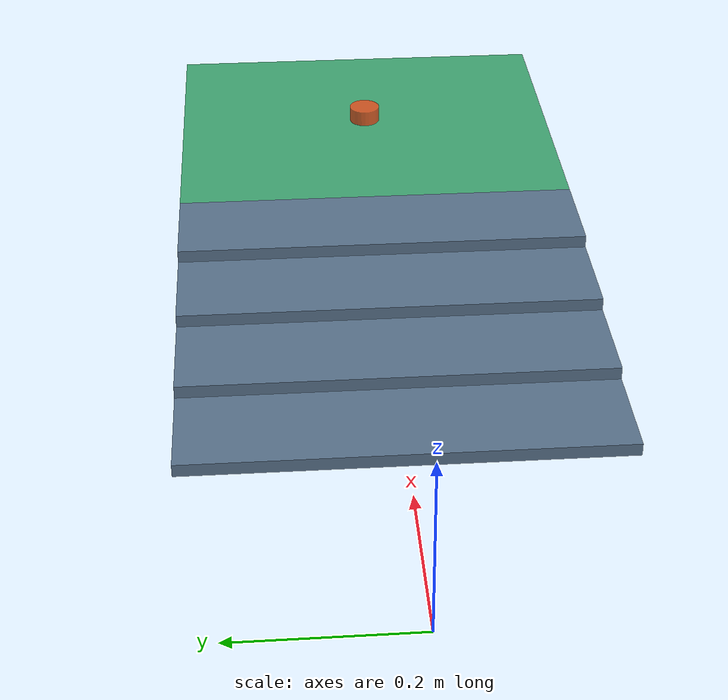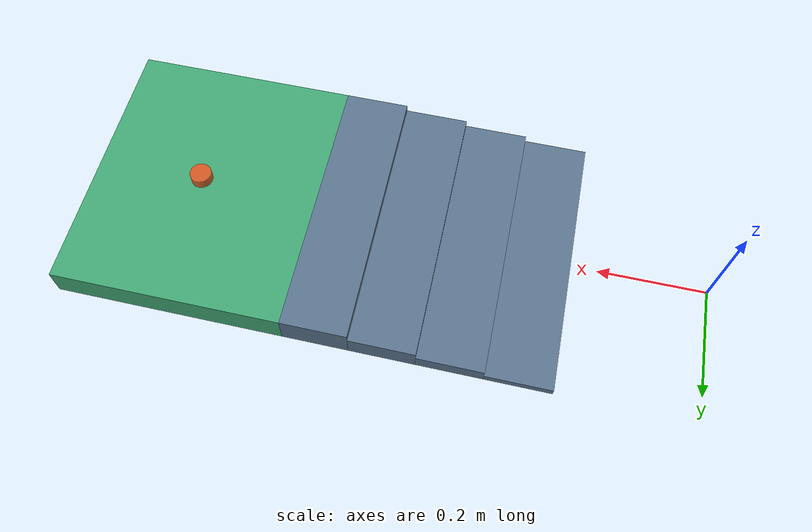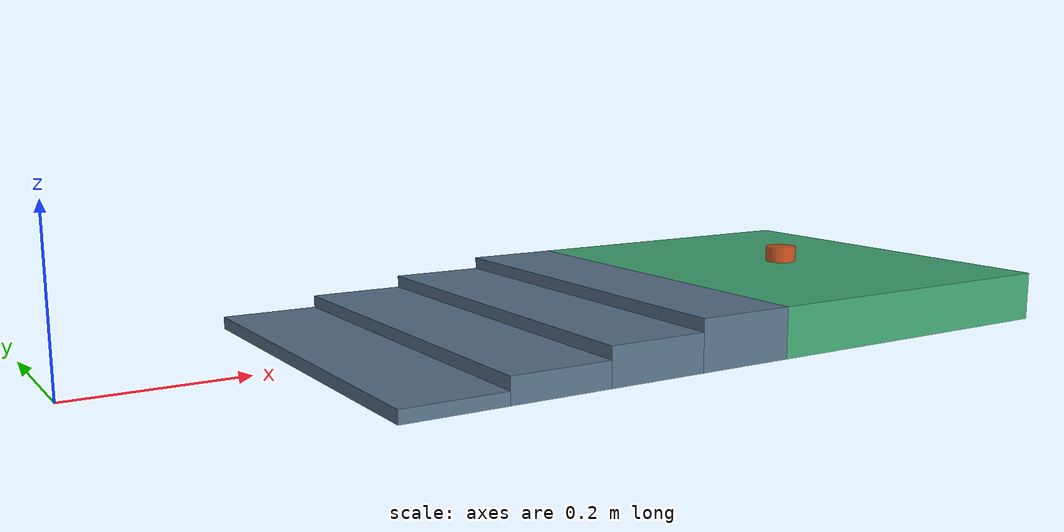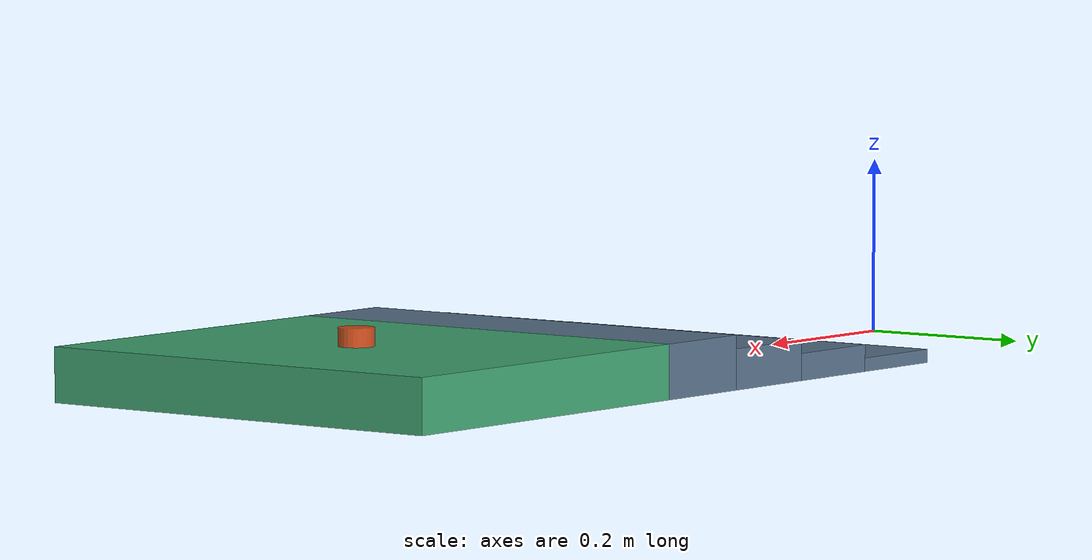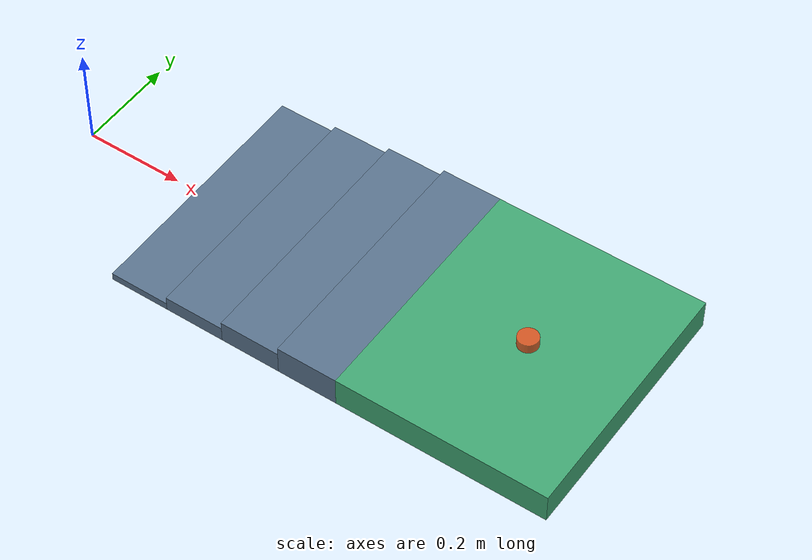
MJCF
<mujoco model="stairs">
    <asset>
        <material name="stairs_mat" rgba="0.35 0.45 0.55 1.0" reflectance="0.2" roughness="0.5"/>
        <material name="stairs_top_mat" rgba="0.25 0.65 0.45 1.0" reflectance="0.3" roughness="0.4"/>
        <material name="stairs_target_mat" rgba="1.0 0.3 0.1 0.8" reflectance="0.5"/>
    </asset>
    <worldbody>
        <geom name="stair_step_1" type="box" pos="0.31 0 0.0075" size="0.06 0.25 0.0075"
              material="stairs_mat" condim="3" friction="1.2 0.01 0.001" solref="0.02 1"/>
        <geom name="stair_step_2" type="box" pos="0.43 0 0.0150" size="0.06 0.25 0.0150"
              material="stairs_mat" condim="3" friction="1.2 0.01 0.001" solref="0.02 1"/>
        <geom name="stair_step_3" type="box" pos="0.55 0 0.0225" size="0.06 0.25 0.0225"
              material="stairs_mat" condim="3" friction="1.2 0.01 0.001" solref="0.02 1"/>
        <geom name="stair_step_4" type="box" pos="0.67 0 0.0300" size="0.06 0.25 0.0300"
              material="stairs_mat" condim="3" friction="1.2 0.01 0.001" solref="0.02 1"/>
        <geom name="stair_top_platform" type="box" pos="0.94 0 0.0300" size="0.21 0.25 0.0300"
              material="stairs_top_mat" condim="3" friction="1.2 0.01 0.001" solref="0.02 1"/>
        <site name="stairs_top_target" pos="0.95 0 0.07" type="cylinder" size="0.02 0.01" material="stairs_target_mat"/>
    </worldbody>
</mujoco>
